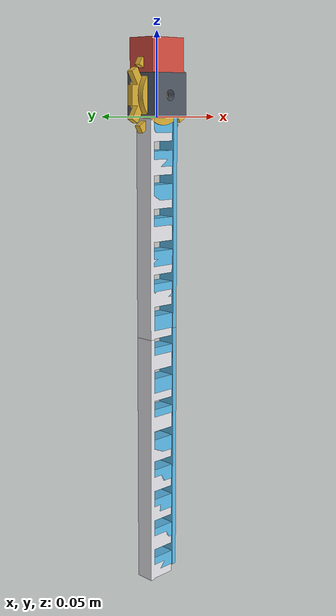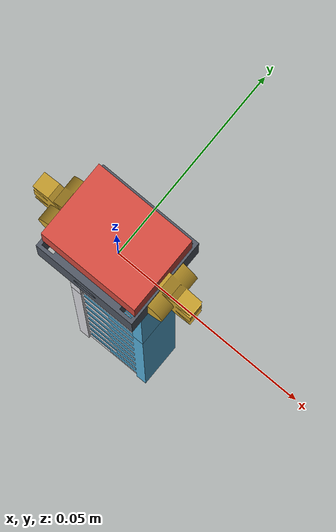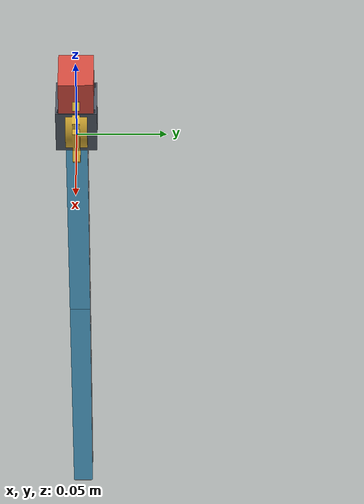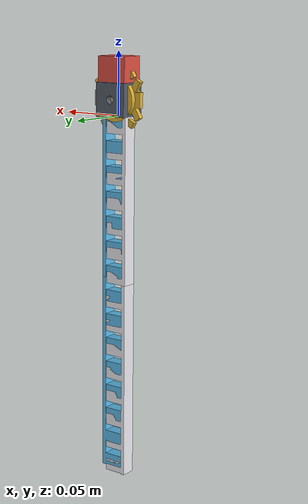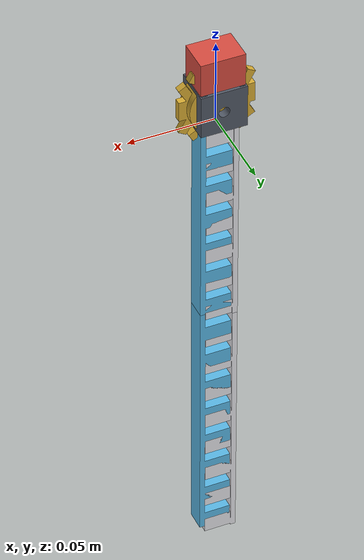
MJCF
<mujoco model="zipchain_viewer">
  <compiler meshdir="out" angle="radian" autolimits="true"/>
  <option gravity="0 0 0"/>
  <visual><global offwidth="960" offheight="720"/>
    <headlight ambient="0.45 0.45 0.45" diffuse="0.55 0.55 0.55" specular="0.1 0.1 0.1"/>
  </visual>
  <asset>
    <mesh name="head"     file="head.stl"     scale="0.001 0.001 0.001"/>
    <mesh name="sprocket" file="sprocket.stl" scale="0.001 0.001 0.001"/>
    <mesh name="strand"   file="strand.stl"   scale="0.001 0.001 0.001"/>
    <material name="pla"    rgba="0.32 0.35 0.40 1"/>
    <material name="gold"   rgba="0.85 0.68 0.20 1"/>
    <material name="stA"    rgba="0.90 0.90 0.92 1"/>
    <material name="stB"    rgba="0.35 0.72 0.90 1"/>
    <material name="load"   rgba="0.85 0.30 0.25 1"/>
  </asset>

  <worldbody>
    <light pos="0.25 0.5 0.7" dir="-0.2 -0.4 -1"/>
    <camera name="iso" pos="0.52 0.52 0.40" xyaxes="-0.728 0.686 0 -0.130 -0.138 0.981"/>

    <!-- static guide / merge head -->
    <geom type="mesh" mesh="head" material="pla" contype="0" conaffinity="0"/>

    <!-- zip sprocket: spins about Y at the head centre -->
    <body name="sprk" pos="0 0 0.01300">
      <joint name="spin" type="hinge" axis="0 1 0"/>
      <geom type="mesh" mesh="sprocket" material="gold" contype="0" conaffinity="0"/>
    </body>

    <body name="column" pos="0 0 -0.29400">
      <joint name="deploy" type="slide" axis="0 0 1" range="0 0.30000"/>
      <geom type="mesh" mesh="strand" material="stA" contype="0" conaffinity="0"/>
      <geom type="mesh" mesh="strand" material="stA" contype="0" conaffinity="0"
            pos="0 0 0.16000"/>
      <geom type="mesh" mesh="strand" material="stB" contype="0" conaffinity="0"
            euler="0 0 3.14159" pos="0 0 0.00500"/>
      <geom type="mesh" mesh="strand" material="stB" contype="0" conaffinity="0"
            euler="0 0 3.14159" pos="0 0 0.16500"/>
      <!-- payload riding the column tip -->
      <geom type="box" size="0.01280 0.00960 0.010"
            pos="0 0 0.33000" material="load" contype="0" conaffinity="0"/>
    </body>
  </worldbody>
</mujoco>
